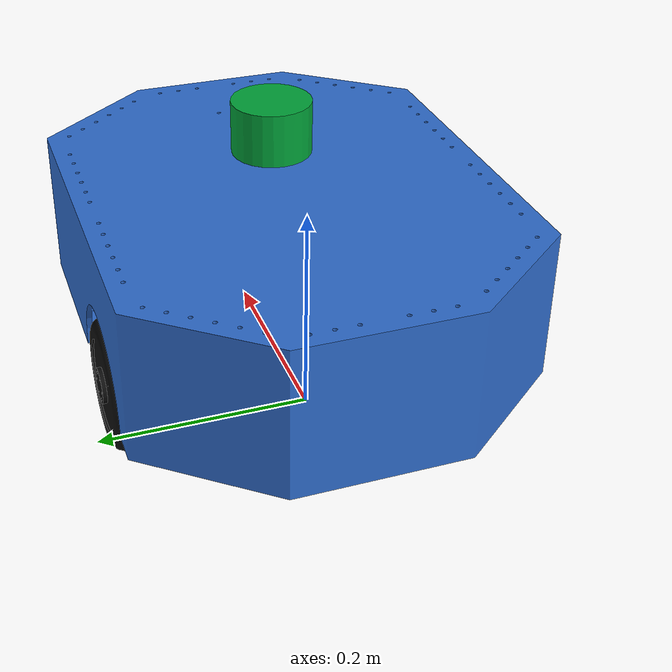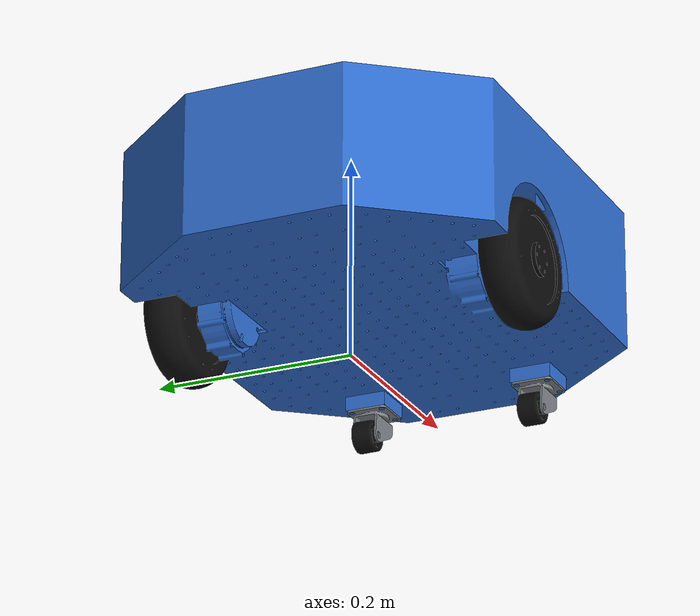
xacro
<?xml version="1.0"?>
<robot xmlns:xacro="http://www.ros.org/wiki/xacro" name="nino">
  <xacro:arg
    name="controllers_file"
    default="$(find nino_control)/config/controllers.yaml"/>

  <!-- Dimensions measured from the supplied SolidWorks STL export. -->
  <xacro:property name="drive_wheel_radius" value="0.0625"/>
  <xacro:property name="drive_wheel_width" value="0.047"/>
  <xacro:property name="drive_wheel_joint_y" value="0.1935"/>
  <!-- Contact-centre separation: 2 * (0.1935 - 0.02213167). -->
  <xacro:property name="drive_wheel_separation" value="0.34273666"/>
  <xacro:property name="caster_radius" value="0.016"/>
  <xacro:property name="caster_width" value="0.021"/>

  <material name="chassis_blue">
    <color rgba="0.18 0.42 0.80 1.0"/>
  </material>
  <material name="wheel_black">
    <color rgba="0.05 0.05 0.05 1.0"/>
  </material>
  <material name="metal_grey">
    <color rgba="0.48 0.50 0.52 1.0"/>
  </material>

  <link name="base_footprint"/>

  <link name="base_link">
    <inertial>
      <!-- CAD mass and moments; lateral COM and lateral cross-products are
           made exactly symmetric so equal wheel commands produce straight travel. -->
      <origin xyz="0.0592774512 0 0.0848297985" rpy="0 0 0"/>
      <mass value="3.6594075244"/>
      <inertia
        ixx="0.0286794731" ixy="0" ixz="-0.00039888648"
        iyy="0.0473970329" iyz="0"
        izz="0.0716779090"/>
    </inertial>
    <visual>
      <geometry>
        <mesh filename="package://nino_description/meshes/base_link.STL"/>
      </geometry>
      <material name="chassis_blue"/>
    </visual>
    <!-- Use the CAD chassis in the identical frame for exact visual/collision
         alignment. Do not add an origin offset or an independent scale here. -->
    <collision>
      <geometry>
        <mesh filename="package://nino_description/meshes/base_link.STL"/>
      </geometry>
    </collision>
  </link>

  <joint name="base_footprint_joint" type="fixed">
    <parent link="base_footprint"/>
    <child link="base_link"/>
    <origin xyz="0 0 ${drive_wheel_radius}" rpy="0 0 0"/>
  </joint>

  <!--
    Sensor names and topics intentionally match Linorobot2 Jazzy:
      imu_link -> /imu/data
      laser    -> /scan
    Their fixed joints are published by robot_state_publisher.
  -->
  <link name="imu_link"/>
  <joint name="imu_to_base_link" type="fixed">
    <parent link="base_link"/>
    <child link="imu_link"/>
    <origin xyz="0.05 0 0.10" rpy="0 0 0"/>
  </joint>

  <link name="laser">
    <inertial>
      <origin xyz="0 0 0" rpy="0 0 0"/>
      <mass value="0.10"/>
      <inertia ixx="0.00004" ixy="0" ixz="0"
               iyy="0.00004" iyz="0" izz="0.00007"/>
    </inertial>
    <visual>
      <geometry>
        <cylinder radius="0.0375" length="0.05"/>
      </geometry>
      <material name="sensor_green">
        <color rgba="0.003 0.639 0.223 1.0"/>
      </material>
    </visual>
    <collision>
      <geometry>
        <cylinder radius="0.0375" length="0.05"/>
      </geometry>
    </collision>
  </link>
  <joint name="laser_to_base_link" type="fixed">
    <parent link="base_link"/>
    <child link="laser"/>
    <origin xyz="0.10 0 0.18" rpy="0 0 0"/>
  </joint>

  <gazebo>
    <plugin filename="gz-sim-imu-system" name="gz::sim::systems::Imu"/>
    <plugin filename="gz-sim-sensors-system" name="gz::sim::systems::Sensors">
      <render_engine>ogre2</render_engine>
    </plugin>
    <!-- Ground-truth velocity is used only to measure simulated wheel slip;
         it is never used for localization or direct control. -->
    <plugin filename="gz-sim-odometry-publisher-system"
            name="gz::sim::systems::OdometryPublisher">
      <odom_frame>world</odom_frame>
      <robot_base_frame>base_footprint</robot_base_frame>
      <odom_publish_frequency>50</odom_publish_frequency>
      <odom_topic>/model/nino/odometry</odom_topic>
    </plugin>
  </gazebo>

  <gazebo reference="imu_link">
    <sensor name="imu_sensor" type="imu">
      <topic>imu/data</topic>
      <update_rate>50</update_rate>
      <always_on>true</always_on>
      <visualize>false</visualize>
      <imu>
        <angular_velocity>
          <x><noise type="gaussian"><mean>0</mean><stddev>0.0002</stddev></noise></x>
          <y><noise type="gaussian"><mean>0</mean><stddev>0.0002</stddev></noise></y>
          <z><noise type="gaussian"><mean>0</mean><stddev>0.0002</stddev></noise></z>
        </angular_velocity>
        <linear_acceleration>
          <x><noise type="gaussian"><mean>0</mean><stddev>0.017</stddev></noise></x>
          <y><noise type="gaussian"><mean>0</mean><stddev>0.017</stddev></noise></y>
          <z><noise type="gaussian"><mean>0</mean><stddev>0.017</stddev></noise></z>
        </linear_acceleration>
      </imu>
    </sensor>
  </gazebo>

  <gazebo reference="laser">
    <sensor name="gpu_lidar" type="gpu_lidar">
      <topic>scan</topic>
      <update_rate>10</update_rate>
      <always_on>true</always_on>
      <visualize>true</visualize>
      <lidar>
        <scan>
          <horizontal>
            <samples>360</samples>
            <resolution>1</resolution>
            <min_angle>-${pi}</min_angle>
            <max_angle>${pi}</max_angle>
          </horizontal>
          <vertical>
            <samples>1</samples>
            <resolution>1</resolution>
            <min_angle>0</min_angle>
            <max_angle>0</max_angle>
          </vertical>
        </scan>
        <range>
          <min>0.08</min>
          <max>12.0</max>
          <resolution>0.01</resolution>
        </range>
        <noise>
          <type>gaussian</type>
          <mean>0</mean>
          <stddev>0.005</stddev>
        </noise>
      </lidar>
    </sensor>
  </gazebo>

  <xacro:macro name="drive_wheel" params="side y mesh com_z collision_z">
    <link name="${side}_wheel_link">
      <inertial>
        <origin xyz="0 0 ${com_z}" rpy="0 0 0"/>
        <mass value="0.4194392311"/>
        <inertia
          ixx="0.00043046655" ixy="0" ixz="0"
          iyy="0.00043046655" iyz="0"
          izz="0.00076090197"/>
      </inertial>
      <visual>
        <geometry>
          <mesh filename="package://nino_description/meshes/${mesh}"/>
        </geometry>
        <material name="wheel_black"/>
      </visual>
      <collision>
        <origin xyz="0 0 ${collision_z}" rpy="0 0 0"/>
        <geometry>
          <cylinder radius="${drive_wheel_radius}" length="${drive_wheel_width}"/>
        </geometry>
      </collision>
    </link>

    <joint name="${side}_wheel_joint" type="continuous">
      <origin xyz="0 ${y} 0" rpy="${pi / 2} 0 0"/>
      <parent link="base_link"/>
      <child link="${side}_wheel_link"/>
      <!-- -Z in the rotated joint frame is +Y in the robot frame. -->
      <axis xyz="0 0 -1"/>
      <!-- 24 rad/s is the emergency joint limit.  The effort controller uses
           a 12 rad/s software limit, leaving transient feedback margin. -->
      <limit effort="12.0" velocity="24.0"/>
      <dynamics damping="0.02" friction="0.0"/>
    </joint>
  </xacro:macro>

  <xacro:drive_wheel
    side="left" y="${drive_wheel_joint_y}"
    mesh="left_wheel_link.STL" com_z="0.0221316704" collision_z="0.0235"/>
  <xacro:drive_wheel
    side="right" y="${-drive_wheel_joint_y}"
    mesh="right_wheel_link.STL" com_z="-0.0221316704" collision_z="-0.0235"/>

  <xacro:macro name="caster" params="index y">
    <link name="caster_bracket_${index}_link">
      <inertial>
        <origin xyz="-0.0016273079 0 -0.0041294433" rpy="0 0 0"/>
        <mass value="0.0821604275"/>
        <inertia
          ixx="0.00001115258" ixy="0" ixz="-0.00000082020"
          iyy="0.00001170793" iyz="0"
          izz="0.00001777544"/>
      </inertial>
      <visual>
        <geometry>
          <mesh filename="package://nino_description/meshes/caster_bracket_front1.STL"/>
        </geometry>
        <material name="metal_grey"/>
      </visual>
      <collision>
        <geometry>
          <!-- Use the same geometry and frame as the visual.  The previous
               solid cylinder filled the open caster fork and extended into
               the cable before the caster wheel reached it. -->
          <mesh filename="package://nino_description/meshes/caster_bracket_front1.STL"/>
        </geometry>
      </collision>
    </link>

    <joint name="caster_${index}_swivel_joint" type="continuous">
      <origin xyz="0.24362 ${y} -0.0215" rpy="0 0 0"/>
      <parent link="base_link"/>
      <child link="caster_bracket_${index}_link"/>
      <axis xyz="0 0 1"/>
      <limit effort="2.0" velocity="20.0"/>
      <dynamics damping="0.08" friction="0.01"/>
    </joint>

    <link name="caster_${index}_wheel_link">
      <inertial>
        <origin xyz="0 0 0" rpy="0 0 0"/>
        <mass value="0.0131302038"/>
        <inertia
          ixx="0.00000131770" ixy="0" ixz="0"
          iyy="0.00000131770" iyz="0"
          izz="0.00000189555"/>
      </inertial>
      <visual>
        <geometry>
          <!-- The supplied front2 STL is empty, so both identical caster
               assemblies intentionally use the valid front1 wheel mesh. -->
          <mesh filename="package://nino_description/meshes/caster_wheel_front.STL"/>
        </geometry>
        <material name="wheel_black"/>
      </visual>
      <collision>
        <geometry>
          <cylinder radius="${caster_radius}" length="${caster_width}"/>
        </geometry>
      </collision>
    </link>

    <joint name="caster_${index}_wheel_joint" type="continuous">
      <origin xyz="-0.016 0 -0.025" rpy="${pi / 2} 0 0"/>
      <parent link="caster_bracket_${index}_link"/>
      <child link="caster_${index}_wheel_link"/>
      <axis xyz="0 0 -1"/>
      <limit effort="1.0" velocity="30.0"/>
      <dynamics damping="0.01" friction="0.0"/>
    </joint>
  </xacro:macro>

  <xacro:caster index="left" y="0.088"/>
  <xacro:caster index="right" y="-0.088"/>

  <!-- Identical contact parameters on the left and right prevent artificial
       yaw.  Caster friction is lower so the swivels align without scrubbing. -->
  <gazebo reference="left_wheel_link">
    <mu1>1.2</mu1>
    <mu2>1.2</mu2>
    <kp>1000000</kp>
    <kd>10</kd>
  </gazebo>
  <gazebo reference="right_wheel_link">
    <mu1>1.2</mu1>
    <mu2>1.2</mu2>
    <kp>1000000</kp>
    <kd>10</kd>
  </gazebo>
  <gazebo reference="caster_left_wheel_link">
    <mu1>0.35</mu1>
    <mu2>0.35</mu2>
  </gazebo>
  <gazebo reference="caster_right_wheel_link">
    <mu1>0.35</mu1>
    <mu2>0.35</mu2>
  </gazebo>

  <ros2_control name="GazeboSimSystem" type="system">
    <hardware>
      <plugin>gz_ros2_control/GazeboSimSystem</plugin>
    </hardware>

    <joint name="left_wheel_joint">
      <command_interface name="effort">
        <param name="min">-12.0</param>
        <param name="max">12.0</param>
      </command_interface>
      <state_interface name="position"/>
      <state_interface name="velocity"/>
      <state_interface name="effort"/>
    </joint>

    <joint name="right_wheel_joint">
      <command_interface name="effort">
        <param name="min">-12.0</param>
        <param name="max">12.0</param>
      </command_interface>
      <state_interface name="position"/>
      <state_interface name="velocity"/>
      <state_interface name="effort"/>
    </joint>

    <!-- Register the Gazebo IMU with ros2_control as well. This keeps the
         hardware model complete; /imu/data is still published by ros_gz_bridge. -->
    <sensor name="imu_sensor">
      <state_interface name="orientation.x"/>
      <state_interface name="orientation.y"/>
      <state_interface name="orientation.z"/>
      <state_interface name="orientation.w"/>
      <state_interface name="angular_velocity.x"/>
      <state_interface name="angular_velocity.y"/>
      <state_interface name="angular_velocity.z"/>
      <state_interface name="linear_acceleration.x"/>
      <state_interface name="linear_acceleration.y"/>
      <state_interface name="linear_acceleration.z"/>
    </sensor>

    <!-- Passive caster joints are exported for complete /joint_states. -->
    <joint name="caster_left_swivel_joint">
      <state_interface name="position"/>
      <state_interface name="velocity"/>
    </joint>
    <joint name="caster_left_wheel_joint">
      <state_interface name="position"/>
      <state_interface name="velocity"/>
    </joint>
    <joint name="caster_right_swivel_joint">
      <state_interface name="position"/>
      <state_interface name="velocity"/>
    </joint>
    <joint name="caster_right_wheel_joint">
      <state_interface name="position"/>
      <state_interface name="velocity"/>
    </joint>
  </ros2_control>

  <gazebo>
    <plugin filename="libgz_ros2_control-system.so"
            name="gz_ros2_control::GazeboSimROS2ControlPlugin">
      <parameters>$(arg controllers_file)</parameters>
    </plugin>
  </gazebo>
</robot>
